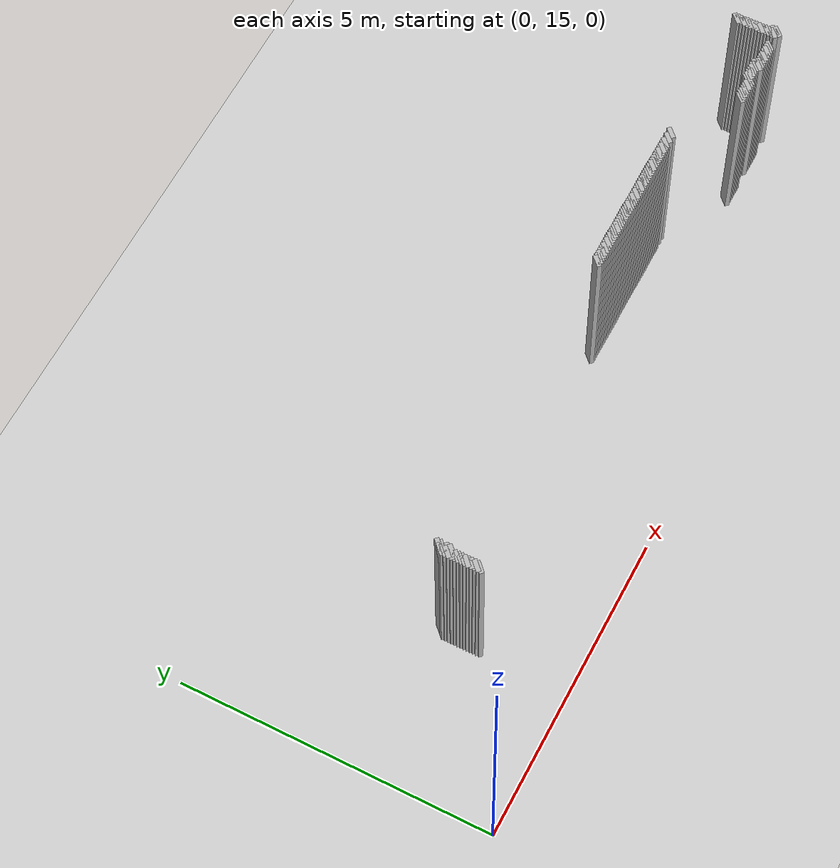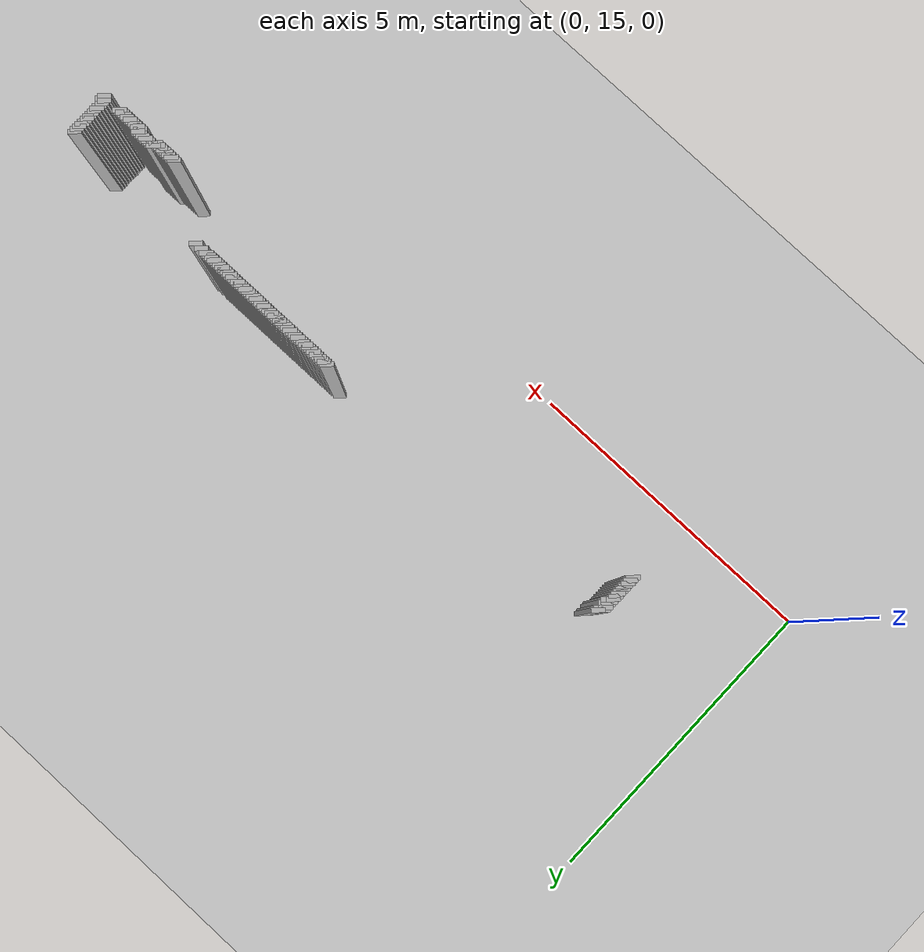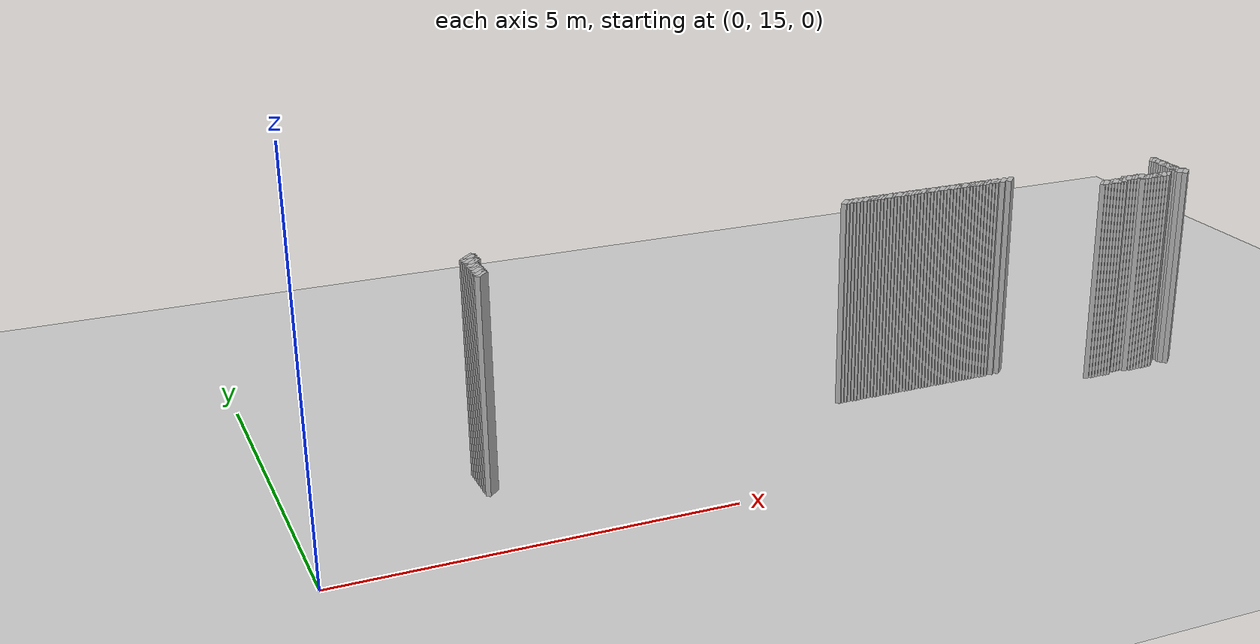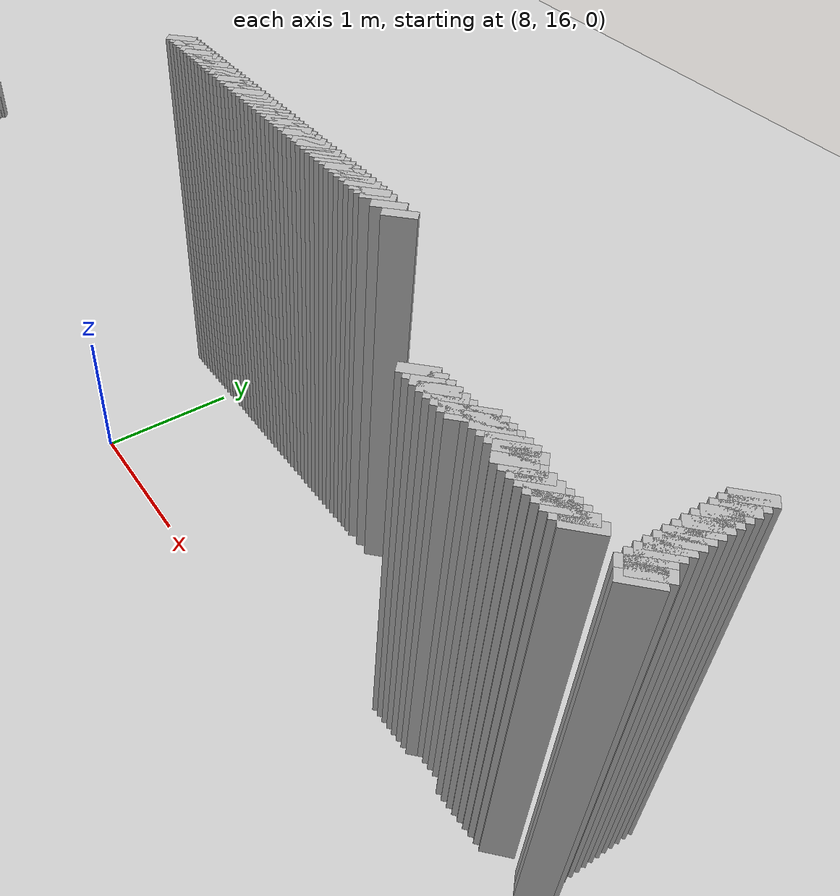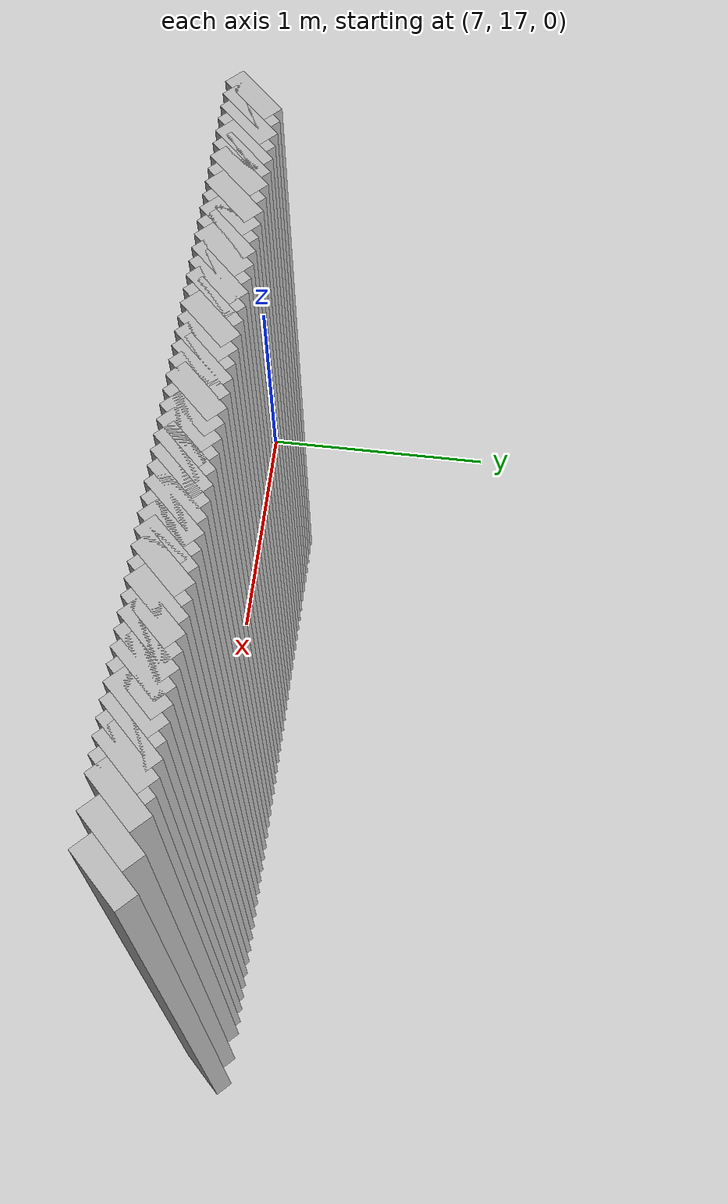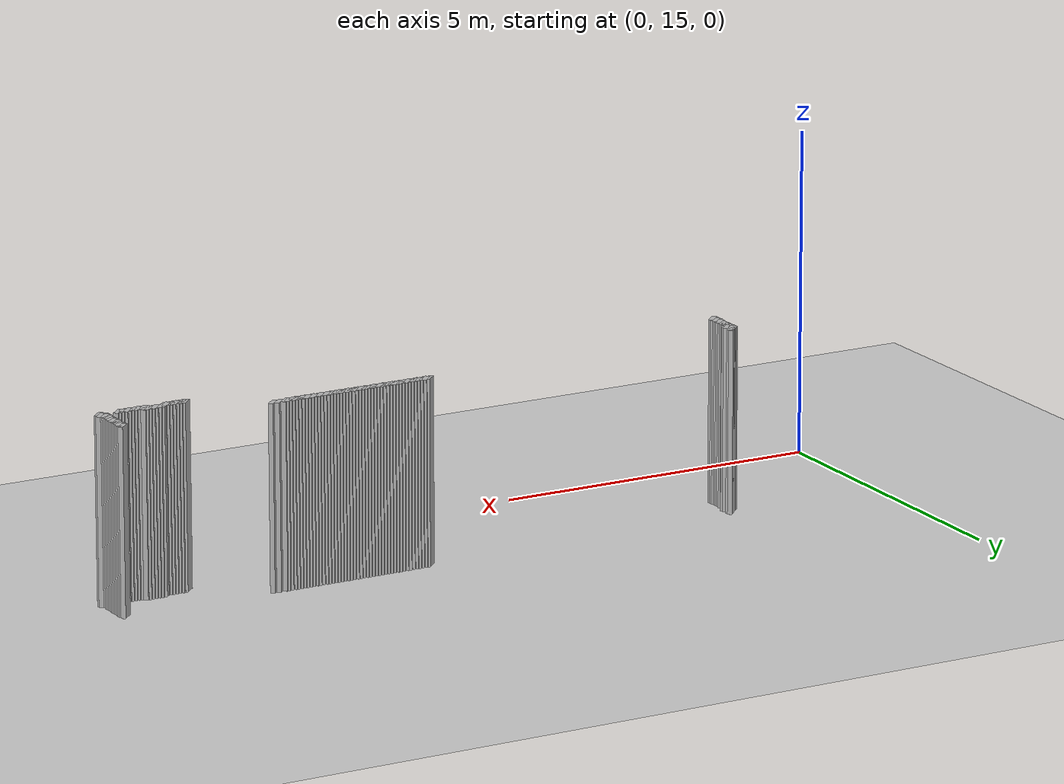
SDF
<sdf version="1.5">
 <world name="default">
  <include><uri>model://ground_plane</uri></include>
  <include><uri>model://sun</uri></include>
  <model name="grey_wall_214">
   <static>1</static>
   <link name="link">
    <pose>7.5 17.150000000000002  1.4 0 0 -0.7853981633974128</pose>
    <collision name="collision">
     <geometry><box><size>0.07071067811865325 .2  2.8</size></box></geometry>
    </collision>
    <visual name="visual">
     <cast_shadows>0</cast_shadows>
     <geometry><box><size>0.07071067811865325 .2  2.8</size></box></geometry>
    </visual>
   </link>
  </model>
  <model name="grey_wall_215">
   <static>1</static>
   <link name="link">
    <pose>7.550000000000001 17.150000000000002  1.4 0 0 -0.7853981633974128</pose>
    <collision name="collision">
     <geometry><box><size>0.07071067811865325 .2  2.8</size></box></geometry>
    </collision>
    <visual name="visual">
     <cast_shadows>0</cast_shadows>
     <geometry><box><size>0.07071067811865325 .2  2.8</size></box></geometry>
    </visual>
   </link>
  </model>
  <model name="grey_wall_216">
   <static>1</static>
   <link name="link">
    <pose>7.6000000000000005 17.150000000000002  1.4 0 0 -0.7853981633974128</pose>
    <collision name="collision">
     <geometry><box><size>0.07071067811865325 .2  2.8</size></box></geometry>
    </collision>
    <visual name="visual">
     <cast_shadows>0</cast_shadows>
     <geometry><box><size>0.07071067811865325 .2  2.8</size></box></geometry>
    </visual>
   </link>
  </model>
  <model name="grey_wall_217">
   <static>1</static>
   <link name="link">
    <pose>7.65 17.150000000000002  1.4 0 0 -0.7853981633974128</pose>
    <collision name="collision">
     <geometry><box><size>0.07071067811865325 .2  2.8</size></box></geometry>
    </collision>
    <visual name="visual">
     <cast_shadows>0</cast_shadows>
     <geometry><box><size>0.07071067811865325 .2  2.8</size></box></geometry>
    </visual>
   </link>
  </model>
  <model name="grey_wall_218">
   <static>1</static>
   <link name="link">
    <pose>7.7 17.150000000000002  1.4 0 0 -0.7853981633974128</pose>
    <collision name="collision">
     <geometry><box><size>0.07071067811865325 .2  2.8</size></box></geometry>
    </collision>
    <visual name="visual">
     <cast_shadows>0</cast_shadows>
     <geometry><box><size>0.07071067811865325 .2  2.8</size></box></geometry>
    </visual>
   </link>
  </model>
  <model name="grey_wall_219">
   <static>1</static>
   <link name="link">
    <pose>7.75 17.150000000000002  1.4 0 0 -0.7853981633974128</pose>
    <collision name="collision">
     <geometry><box><size>0.07071067811865325 .2  2.8</size></box></geometry>
    </collision>
    <visual name="visual">
     <cast_shadows>0</cast_shadows>
     <geometry><box><size>0.07071067811865325 .2  2.8</size></box></geometry>
    </visual>
   </link>
  </model>
  <model name="grey_wall_220">
   <static>1</static>
   <link name="link">
    <pose>7.800000000000001 17.150000000000002  1.4 0 0 -0.7853981633974128</pose>
    <collision name="collision">
     <geometry><box><size>0.07071067811865325 .2  2.8</size></box></geometry>
    </collision>
    <visual name="visual">
     <cast_shadows>0</cast_shadows>
     <geometry><box><size>0.07071067811865325 .2  2.8</size></box></geometry>
    </visual>
   </link>
  </model>
  <model name="grey_wall_221">
   <static>1</static>
   <link name="link">
    <pose>7.8500000000000005 17.150000000000002  1.4 0 0 -0.7853981633974128</pose>
    <collision name="collision">
     <geometry><box><size>0.07071067811865325 .2  2.8</size></box></geometry>
    </collision>
    <visual name="visual">
     <cast_shadows>0</cast_shadows>
     <geometry><box><size>0.07071067811865325 .2  2.8</size></box></geometry>
    </visual>
   </link>
  </model>
  <model name="grey_wall_222">
   <static>1</static>
   <link name="link">
    <pose>7.9 17.150000000000002  1.4 0 0 -0.7853981633974128</pose>
    <collision name="collision">
     <geometry><box><size>0.07071067811865325 .2  2.8</size></box></geometry>
    </collision>
    <visual name="visual">
     <cast_shadows>0</cast_shadows>
     <geometry><box><size>0.07071067811865325 .2  2.8</size></box></geometry>
    </visual>
   </link>
  </model>
  <model name="grey_wall_223">
   <static>1</static>
   <link name="link">
    <pose>7.95 17.150000000000002  1.4 0 0 -0.7853981633974128</pose>
    <collision name="collision">
     <geometry><box><size>0.07071067811865325 .2  2.8</size></box></geometry>
    </collision>
    <visual name="visual">
     <cast_shadows>0</cast_shadows>
     <geometry><box><size>0.07071067811865325 .2  2.8</size></box></geometry>
    </visual>
   </link>
  </model>
  <model name="grey_wall_224">
   <static>1</static>
   <link name="link">
    <pose>8.0 17.150000000000002  1.4 0 0 -0.7853981633974128</pose>
    <collision name="collision">
     <geometry><box><size>0.07071067811865325 .2  2.8</size></box></geometry>
    </collision>
    <visual name="visual">
     <cast_shadows>0</cast_shadows>
     <geometry><box><size>0.07071067811865325 .2  2.8</size></box></geometry>
    </visual>
   </link>
  </model>
  <model name="grey_wall_225">
   <static>1</static>
   <link name="link">
    <pose>8.05 17.150000000000002  1.4 0 0 -0.7853981633974128</pose>
    <collision name="collision">
     <geometry><box><size>0.07071067811865325 .2  2.8</size></box></geometry>
    </collision>
    <visual name="visual">
     <cast_shadows>0</cast_shadows>
     <geometry><box><size>0.07071067811865325 .2  2.8</size></box></geometry>
    </visual>
   </link>
  </model>
  <model name="grey_wall_226">
   <static>1</static>
   <link name="link">
    <pose>8.1 17.150000000000002  1.4 0 0 -0.7853981633974128</pose>
    <collision name="collision">
     <geometry><box><size>0.07071067811865325 .2  2.8</size></box></geometry>
    </collision>
    <visual name="visual">
     <cast_shadows>0</cast_shadows>
     <geometry><box><size>0.07071067811865325 .2  2.8</size></box></geometry>
    </visual>
   </link>
  </model>
  <model name="grey_wall_227">
   <static>1</static>
   <link name="link">
    <pose>8.15 17.150000000000002  1.4 0 0 -0.7853981633974128</pose>
    <collision name="collision">
     <geometry><box><size>0.07071067811865325 .2  2.8</size></box></geometry>
    </collision>
    <visual name="visual">
     <cast_shadows>0</cast_shadows>
     <geometry><box><size>0.07071067811865325 .2  2.8</size></box></geometry>
    </visual>
   </link>
  </model>
  <model name="grey_wall_228">
   <static>1</static>
   <link name="link">
    <pose>8.200000000000001 17.150000000000002  1.4 0 0 -0.7853981633974128</pose>
    <collision name="collision">
     <geometry><box><size>0.07071067811865325 .2  2.8</size></box></geometry>
    </collision>
    <visual name="visual">
     <cast_shadows>0</cast_shadows>
     <geometry><box><size>0.07071067811865325 .2  2.8</size></box></geometry>
    </visual>
   </link>
  </model>
  <model name="grey_wall_229">
   <static>1</static>
   <link name="link">
    <pose>8.25 17.150000000000002  1.4 0 0 -0.7853981633974128</pose>
    <collision name="collision">
     <geometry><box><size>0.07071067811865325 .2  2.8</size></box></geometry>
    </collision>
    <visual name="visual">
     <cast_shadows>0</cast_shadows>
     <geometry><box><size>0.07071067811865325 .2  2.8</size></box></geometry>
    </visual>
   </link>
  </model>
  <model name="grey_wall_230">
   <static>1</static>
   <link name="link">
    <pose>8.3 17.150000000000002  1.4 0 0 -0.7853981633974128</pose>
    <collision name="collision">
     <geometry><box><size>0.07071067811865325 .2  2.8</size></box></geometry>
    </collision>
    <visual name="visual">
     <cast_shadows>0</cast_shadows>
     <geometry><box><size>0.07071067811865325 .2  2.8</size></box></geometry>
    </visual>
   </link>
  </model>
  <model name="grey_wall_231">
   <static>1</static>
   <link name="link">
    <pose>8.35 17.150000000000002  1.4 0 0 -0.7853981633974128</pose>
    <collision name="collision">
     <geometry><box><size>0.07071067811865325 .2  2.8</size></box></geometry>
    </collision>
    <visual name="visual">
     <cast_shadows>0</cast_shadows>
     <geometry><box><size>0.07071067811865325 .2  2.8</size></box></geometry>
    </visual>
   </link>
  </model>
  <model name="grey_wall_232">
   <static>1</static>
   <link name="link">
    <pose>8.4 17.150000000000002  1.4 0 0 -0.7853981633974128</pose>
    <collision name="collision">
     <geometry><box><size>0.07071067811865325 .2  2.8</size></box></geometry>
    </collision>
    <visual name="visual">
     <cast_shadows>0</cast_shadows>
     <geometry><box><size>0.07071067811865325 .2  2.8</size></box></geometry>
    </visual>
   </link>
  </model>
  <model name="grey_wall_233">
   <static>1</static>
   <link name="link">
    <pose>8.450000000000001 17.150000000000002  1.4 0 0 -0.7853981633974128</pose>
    <collision name="collision">
     <geometry><box><size>0.07071067811865325 .2  2.8</size></box></geometry>
    </collision>
    <visual name="visual">
     <cast_shadows>0</cast_shadows>
     <geometry><box><size>0.07071067811865325 .2  2.8</size></box></geometry>
    </visual>
   </link>
  </model>
  <model name="grey_wall_234">
   <static>1</static>
   <link name="link">
    <pose>8.5 17.150000000000002  1.4 0 0 -0.7853981633974128</pose>
    <collision name="collision">
     <geometry><box><size>0.07071067811865325 .2  2.8</size></box></geometry>
    </collision>
    <visual name="visual">
     <cast_shadows>0</cast_shadows>
     <geometry><box><size>0.07071067811865325 .2  2.8</size></box></geometry>
    </visual>
   </link>
  </model>
  <model name="grey_wall_235">
   <static>1</static>
   <link name="link">
    <pose>8.55 17.150000000000002  1.4 0 0 -0.7853981633974128</pose>
    <collision name="collision">
     <geometry><box><size>0.07071067811865325 .2  2.8</size></box></geometry>
    </collision>
    <visual name="visual">
     <cast_shadows>0</cast_shadows>
     <geometry><box><size>0.07071067811865325 .2  2.8</size></box></geometry>
    </visual>
   </link>
  </model>
  <model name="grey_wall_236">
   <static>1</static>
   <link name="link">
    <pose>8.6 17.150000000000002  1.4 0 0 -0.7853981633974128</pose>
    <collision name="collision">
     <geometry><box><size>0.07071067811865325 .2  2.8</size></box></geometry>
    </collision>
    <visual name="visual">
     <cast_shadows>0</cast_shadows>
     <geometry><box><size>0.07071067811865325 .2  2.8</size></box></geometry>
    </visual>
   </link>
  </model>
  <model name="grey_wall_237">
   <static>1</static>
   <link name="link">
    <pose>8.65 17.150000000000002  1.4 0 0 -0.7853981633974128</pose>
    <collision name="collision">
     <geometry><box><size>0.07071067811865325 .2  2.8</size></box></geometry>
    </collision>
    <visual name="visual">
     <cast_shadows>0</cast_shadows>
     <geometry><box><size>0.07071067811865325 .2  2.8</size></box></geometry>
    </visual>
   </link>
  </model>
  <model name="grey_wall_238">
   <static>1</static>
   <link name="link">
    <pose>8.700000000000001 17.150000000000002  1.4 0 0 -0.7853981633974128</pose>
    <collision name="collision">
     <geometry><box><size>0.07071067811865325 .2  2.8</size></box></geometry>
    </collision>
    <visual name="visual">
     <cast_shadows>0</cast_shadows>
     <geometry><box><size>0.07071067811865325 .2  2.8</size></box></geometry>
    </visual>
   </link>
  </model>
  <model name="grey_wall_239">
   <static>1</static>
   <link name="link">
    <pose>8.75 17.150000000000002  1.4 0 0 -0.7853981633974128</pose>
    <collision name="collision">
     <geometry><box><size>0.07071067811865325 .2  2.8</size></box></geometry>
    </collision>
    <visual name="visual">
     <cast_shadows>0</cast_shadows>
     <geometry><box><size>0.07071067811865325 .2  2.8</size></box></geometry>
    </visual>
   </link>
  </model>
  <model name="grey_wall_240">
   <static>1</static>
   <link name="link">
    <pose>8.8 17.150000000000002  1.4 0 0 -0.7853981633974128</pose>
    <collision name="collision">
     <geometry><box><size>0.07071067811865325 .2  2.8</size></box></geometry>
    </collision>
    <visual name="visual">
     <cast_shadows>0</cast_shadows>
     <geometry><box><size>0.07071067811865325 .2  2.8</size></box></geometry>
    </visual>
   </link>
  </model>
  <model name="grey_wall_241">
   <static>1</static>
   <link name="link">
    <pose>8.85 17.150000000000002  1.4 0 0 -0.7853981633974128</pose>
    <collision name="collision">
     <geometry><box><size>0.07071067811865325 .2  2.8</size></box></geometry>
    </collision>
    <visual name="visual">
     <cast_shadows>0</cast_shadows>
     <geometry><box><size>0.07071067811865325 .2  2.8</size></box></geometry>
    </visual>
   </link>
  </model>
  <model name="grey_wall_242">
   <static>1</static>
   <link name="link">
    <pose>8.9 17.150000000000002  1.4 0 0 -0.7853981633974128</pose>
    <collision name="collision">
     <geometry><box><size>0.07071067811865325 .2  2.8</size></box></geometry>
    </collision>
    <visual name="visual">
     <cast_shadows>0</cast_shadows>
     <geometry><box><size>0.07071067811865325 .2  2.8</size></box></geometry>
    </visual>
   </link>
  </model>
  <model name="grey_wall_243">
   <static>1</static>
   <link name="link">
    <pose>8.950000000000001 17.150000000000002  1.4 0 0 -0.7853981633974128</pose>
    <collision name="collision">
     <geometry><box><size>0.07071067811865325 .2  2.8</size></box></geometry>
    </collision>
    <visual name="visual">
     <cast_shadows>0</cast_shadows>
     <geometry><box><size>0.07071067811865325 .2  2.8</size></box></geometry>
    </visual>
   </link>
  </model>
  <model name="grey_wall_244">
   <static>1</static>
   <link name="link">
    <pose>9.0 17.150000000000002  1.4 0 0 -0.7853981633974128</pose>
    <collision name="collision">
     <geometry><box><size>0.07071067811865325 .2  2.8</size></box></geometry>
    </collision>
    <visual name="visual">
     <cast_shadows>0</cast_shadows>
     <geometry><box><size>0.07071067811865325 .2  2.8</size></box></geometry>
    </visual>
   </link>
  </model>
  <model name="grey_wall_245">
   <static>1</static>
   <link name="link">
    <pose>9.05 17.150000000000002  1.4 0 0 -0.7853981633974128</pose>
    <collision name="collision">
     <geometry><box><size>0.07071067811865325 .2  2.8</size></box></geometry>
    </collision>
    <visual name="visual">
     <cast_shadows>0</cast_shadows>
     <geometry><box><size>0.07071067811865325 .2  2.8</size></box></geometry>
    </visual>
   </link>
  </model>
  <model name="grey_wall_246">
   <static>1</static>
   <link name="link">
    <pose>9.1 17.150000000000002  1.4 0 0 -0.7853981633974128</pose>
    <collision name="collision">
     <geometry><box><size>0.07071067811865325 .2  2.8</size></box></geometry>
    </collision>
    <visual name="visual">
     <cast_shadows>0</cast_shadows>
     <geometry><box><size>0.07071067811865325 .2  2.8</size></box></geometry>
    </visual>
   </link>
  </model>
  <model name="grey_wall_247">
   <static>1</static>
   <link name="link">
    <pose>9.15 17.150000000000002  1.4 0 0 -0.7853981633974128</pose>
    <collision name="collision">
     <geometry><box><size>0.07071067811865325 .2  2.8</size></box></geometry>
    </collision>
    <visual name="visual">
     <cast_shadows>0</cast_shadows>
     <geometry><box><size>0.07071067811865325 .2  2.8</size></box></geometry>
    </visual>
   </link>
  </model>
  <model name="grey_wall_248">
   <static>1</static>
   <link name="link">
    <pose>9.200000000000001 17.150000000000002  1.4 0 0 -0.7853981633974128</pose>
    <collision name="collision">
     <geometry><box><size>0.07071067811865325 .2  2.8</size></box></geometry>
    </collision>
    <visual name="visual">
     <cast_shadows>0</cast_shadows>
     <geometry><box><size>0.07071067811865325 .2  2.8</size></box></geometry>
    </visual>
   </link>
  </model>
  <model name="grey_wall_249">
   <static>1</static>
   <link name="link">
    <pose>9.25 17.150000000000002  1.4 0 0 -0.7853981633974128</pose>
    <collision name="collision">
     <geometry><box><size>0.07071067811865325 .2  2.8</size></box></geometry>
    </collision>
    <visual name="visual">
     <cast_shadows>0</cast_shadows>
     <geometry><box><size>0.07071067811865325 .2  2.8</size></box></geometry>
    </visual>
   </link>
  </model>
  <model name="grey_wall_250">
   <static>1</static>
   <link name="link">
    <pose>9.3 17.150000000000002  1.4 0 0 -0.7853981633974128</pose>
    <collision name="collision">
     <geometry><box><size>0.07071067811865325 .2  2.8</size></box></geometry>
    </collision>
    <visual name="visual">
     <cast_shadows>0</cast_shadows>
     <geometry><box><size>0.07071067811865325 .2  2.8</size></box></geometry>
    </visual>
   </link>
  </model>
  <model name="grey_wall_251">
   <static>1</static>
   <link name="link">
    <pose>9.35 17.150000000000002  1.4 0 0 -0.7853981633974128</pose>
    <collision name="collision">
     <geometry><box><size>0.07071067811865325 .2  2.8</size></box></geometry>
    </collision>
    <visual name="visual">
     <cast_shadows>0</cast_shadows>
     <geometry><box><size>0.07071067811865325 .2  2.8</size></box></geometry>
    </visual>
   </link>
  </model>
  <model name="grey_wall_252">
   <static>1</static>
   <link name="link">
    <pose>9.4 17.150000000000002  1.4 0 0 -0.7853981633974128</pose>
    <collision name="collision">
     <geometry><box><size>0.07071067811865325 .2  2.8</size></box></geometry>
    </collision>
    <visual name="visual">
     <cast_shadows>0</cast_shadows>
     <geometry><box><size>0.07071067811865325 .2  2.8</size></box></geometry>
    </visual>
   </link>
  </model>
  <model name="grey_wall_253">
   <static>1</static>
   <link name="link">
    <pose>9.450000000000001 17.150000000000002  1.4 0 0 -0.7853981633974128</pose>
    <collision name="collision">
     <geometry><box><size>0.07071067811865325 .2  2.8</size></box></geometry>
    </collision>
    <visual name="visual">
     <cast_shadows>0</cast_shadows>
     <geometry><box><size>0.07071067811865325 .2  2.8</size></box></geometry>
    </visual>
   </link>
  </model>
  <model name="grey_wall_254">
   <static>1</static>
   <link name="link">
    <pose>9.5 17.150000000000002  1.4 0 0 -0.7853981633974128</pose>
    <collision name="collision">
     <geometry><box><size>0.07071067811865325 .2  2.8</size></box></geometry>
    </collision>
    <visual name="visual">
     <cast_shadows>0</cast_shadows>
     <geometry><box><size>0.07071067811865325 .2  2.8</size></box></geometry>
    </visual>
   </link>
  </model>
  <model name="grey_wall_255">
   <static>1</static>
   <link name="link">
    <pose>9.55 17.150000000000002  1.4 0 0 -0.7853981633974128</pose>
    <collision name="collision">
     <geometry><box><size>0.07071067811865325 .2  2.8</size></box></geometry>
    </collision>
    <visual name="visual">
     <cast_shadows>0</cast_shadows>
     <geometry><box><size>0.07071067811865325 .2  2.8</size></box></geometry>
    </visual>
   </link>
  </model>
  <model name="grey_wall_256">
   <static>1</static>
   <link name="link">
    <pose>9.600000000000001 17.150000000000002  1.4 0 0 -0.7853981633974128</pose>
    <collision name="collision">
     <geometry><box><size>0.07071067811865325 .2  2.8</size></box></geometry>
    </collision>
    <visual name="visual">
     <cast_shadows>0</cast_shadows>
     <geometry><box><size>0.07071067811865325 .2  2.8</size></box></geometry>
    </visual>
   </link>
  </model>
  <model name="grey_wall_257">
   <static>1</static>
   <link name="link">
    <pose>9.65 17.150000000000002  1.4 0 0 -0.7853981633974128</pose>
    <collision name="collision">
     <geometry><box><size>0.07071067811865325 .2  2.8</size></box></geometry>
    </collision>
    <visual name="visual">
     <cast_shadows>0</cast_shadows>
     <geometry><box><size>0.07071067811865325 .2  2.8</size></box></geometry>
    </visual>
   </link>
  </model>
  <model name="grey_wall_258">
   <static>1</static>
   <link name="link">
    <pose>9.700000000000001 17.150000000000002  1.4 0 0 -0.7853981633974128</pose>
    <collision name="collision">
     <geometry><box><size>0.07071067811865325 .2  2.8</size></box></geometry>
    </collision>
    <visual name="visual">
     <cast_shadows>0</cast_shadows>
     <geometry><box><size>0.07071067811865325 .2  2.8</size></box></geometry>
    </visual>
   </link>
  </model>
  <model name="grey_wall_259">
   <static>1</static>
   <link name="link">
    <pose>9.75 17.150000000000002  1.4 0 0 -0.7853981633974128</pose>
    <collision name="collision">
     <geometry><box><size>0.07071067811865325 .2  2.8</size></box></geometry>
    </collision>
    <visual name="visual">
     <cast_shadows>0</cast_shadows>
     <geometry><box><size>0.07071067811865325 .2  2.8</size></box></geometry>
    </visual>
   </link>
  </model>
  <model name="grey_wall_260">
   <static>1</static>
   <link name="link">
    <pose>9.8 17.150000000000002  1.4 0 0 -0.7853981633974128</pose>
    <collision name="collision">
     <geometry><box><size>0.07071067811865325 .2  2.8</size></box></geometry>
    </collision>
    <visual name="visual">
     <cast_shadows>0</cast_shadows>
     <geometry><box><size>0.07071067811865325 .2  2.8</size></box></geometry>
    </visual>
   </link>
  </model>
  <model name="grey_wall_261">
   <static>1</static>
   <link name="link">
    <pose>9.9 17.150000000000002  1.4 0 0 -0.7853981633974128</pose>
    <collision name="collision">
     <geometry><box><size>0.07071067811865325 .2  2.8</size></box></geometry>
    </collision>
    <visual name="visual">
     <cast_shadows>0</cast_shadows>
     <geometry><box><size>0.07071067811865325 .2  2.8</size></box></geometry>
    </visual>
   </link>
  </model>
  <model name="grey_wall_262">
   <static>1</static>
   <link name="link">
    <pose>10.0 17.150000000000002  1.4 0 0 -0.7853981633974128</pose>
    <collision name="collision">
     <geometry><box><size>0.07071067811865325 .2  2.8</size></box></geometry>
    </collision>
    <visual name="visual">
     <cast_shadows>0</cast_shadows>
     <geometry><box><size>0.07071067811865325 .2  2.8</size></box></geometry>
    </visual>
   </link>
  </model>
  <model name="grey_wall_263">
   <static>1</static>
   <link name="link">
    <pose>12.350000000000001 17.150000000000002  1.4 0 0 -0.7853981633974128</pose>
    <collision name="collision">
     <geometry><box><size>0.07071067811865325 .2  2.8</size></box></geometry>
    </collision>
    <visual name="visual">
     <cast_shadows>0</cast_shadows>
     <geometry><box><size>0.07071067811865325 .2  2.8</size></box></geometry>
    </visual>
   </link>
  </model>
  <model name="grey_wall_264">
   <static>1</static>
   <link name="link">
    <pose>2.45 17.1  1.4 0 0 -0.7853981633974216</pose>
    <collision name="collision">
     <geometry><box><size>0.07071067811865261 .2  2.8</size></box></geometry>
    </collision>
    <visual name="visual">
     <cast_shadows>0</cast_shadows>
     <geometry><box><size>0.07071067811865261 .2  2.8</size></box></geometry>
    </visual>
   </link>
  </model>
  <model name="grey_wall_265">
   <static>1</static>
   <link name="link">
    <pose>12.350000000000001 17.1  1.4 0 0 -0.7853981633974128</pose>
    <collision name="collision">
     <geometry><box><size>0.07071067811865325 .2  2.8</size></box></geometry>
    </collision>
    <visual name="visual">
     <cast_shadows>0</cast_shadows>
     <geometry><box><size>0.07071067811865325 .2  2.8</size></box></geometry>
    </visual>
   </link>
  </model>
  <model name="grey_wall_266">
   <static>1</static>
   <link name="link">
    <pose>2.4000000000000004 17.05  1.4 0 0 -0.7853981633974216</pose>
    <collision name="collision">
     <geometry><box><size>0.07071067811865261 .2  2.8</size></box></geometry>
    </collision>
    <visual name="visual">
     <cast_shadows>0</cast_shadows>
     <geometry><box><size>0.07071067811865261 .2  2.8</size></box></geometry>
    </visual>
   </link>
  </model>
  <model name="grey_wall_267">
   <static>1</static>
   <link name="link">
    <pose>2.45 17.05  1.4 0 0 -0.7853981633974216</pose>
    <collision name="collision">
     <geometry><box><size>0.07071067811865261 .2  2.8</size></box></geometry>
    </collision>
    <visual name="visual">
     <cast_shadows>0</cast_shadows>
     <geometry><box><size>0.07071067811865261 .2  2.8</size></box></geometry>
    </visual>
   </link>
  </model>
  <model name="grey_wall_268">
   <static>1</static>
   <link name="link">
    <pose>12.350000000000001 17.05  1.4 0 0 -0.7853981633974128</pose>
    <collision name="collision">
     <geometry><box><size>0.07071067811865325 .2  2.8</size></box></geometry>
    </collision>
    <visual name="visual">
     <cast_shadows>0</cast_shadows>
     <geometry><box><size>0.07071067811865325 .2  2.8</size></box></geometry>
    </visual>
   </link>
  </model>
  <model name="grey_wall_269">
   <static>1</static>
   <link name="link">
    <pose>2.4000000000000004 17.0  1.4 0 0 -0.7853981633974216</pose>
    <collision name="collision">
     <geometry><box><size>0.07071067811865261 .2  2.8</size></box></geometry>
    </collision>
    <visual name="visual">
     <cast_shadows>0</cast_shadows>
     <geometry><box><size>0.07071067811865261 .2  2.8</size></box></geometry>
    </visual>
   </link>
  </model>
  <model name="grey_wall_270">
   <static>1</static>
   <link name="link">
    <pose>12.350000000000001 17.0  1.4 0 0 -0.7853981633974128</pose>
    <collision name="collision">
     <geometry><box><size>0.07071067811865325 .2  2.8</size></box></geometry>
    </collision>
    <visual name="visual">
     <cast_shadows>0</cast_shadows>
     <geometry><box><size>0.07071067811865325 .2  2.8</size></box></geometry>
    </visual>
   </link>
  </model>
  <model name="grey_wall_271">
   <static>1</static>
   <link name="link">
    <pose>2.4000000000000004 16.95  1.4 0 0 -0.7853981633974216</pose>
    <collision name="collision">
     <geometry><box><size>0.07071067811865261 .2  2.8</size></box></geometry>
    </collision>
    <visual name="visual">
     <cast_shadows>0</cast_shadows>
     <geometry><box><size>0.07071067811865261 .2  2.8</size></box></geometry>
    </visual>
   </link>
  </model>
  <model name="grey_wall_272">
   <static>1</static>
   <link name="link">
    <pose>2.45 16.95  1.4 0 0 -0.7853981633974216</pose>
    <collision name="collision">
     <geometry><box><size>0.07071067811865261 .2  2.8</size></box></geometry>
    </collision>
    <visual name="visual">
     <cast_shadows>0</cast_shadows>
     <geometry><box><size>0.07071067811865261 .2  2.8</size></box></geometry>
    </visual>
   </link>
  </model>
  <model name="grey_wall_273">
   <static>1</static>
   <link name="link">
    <pose>12.350000000000001 16.95  1.4 0 0 -0.7853981633974128</pose>
    <collision name="collision">
     <geometry><box><size>0.07071067811865325 .2  2.8</size></box></geometry>
    </collision>
    <visual name="visual">
     <cast_shadows>0</cast_shadows>
     <geometry><box><size>0.07071067811865325 .2  2.8</size></box></geometry>
    </visual>
   </link>
  </model>
  <model name="grey_wall_274">
   <static>1</static>
   <link name="link">
    <pose>2.4000000000000004 16.900000000000002  1.4 0 0 -0.7853981633974216</pose>
    <collision name="collision">
     <geometry><box><size>0.07071067811865261 .2  2.8</size></box></geometry>
    </collision>
    <visual name="visual">
     <cast_shadows>0</cast_shadows>
     <geometry><box><size>0.07071067811865261 .2  2.8</size></box></geometry>
    </visual>
   </link>
  </model>
  <model name="grey_wall_275">
   <static>1</static>
   <link name="link">
    <pose>2.45 16.900000000000002  1.4 0 0 -0.7853981633974216</pose>
    <collision name="collision">
     <geometry><box><size>0.07071067811865261 .2  2.8</size></box></geometry>
    </collision>
    <visual name="visual">
     <cast_shadows>0</cast_shadows>
     <geometry><box><size>0.07071067811865261 .2  2.8</size></box></geometry>
    </visual>
   </link>
  </model>
  <model name="grey_wall_276">
   <static>1</static>
   <link name="link">
    <pose>12.350000000000001 16.900000000000002  1.4 0 0 -0.7853981633974128</pose>
    <collision name="collision">
     <geometry><box><size>0.07071067811865325 .2  2.8</size></box></geometry>
    </collision>
    <visual name="visual">
     <cast_shadows>0</cast_shadows>
     <geometry><box><size>0.07071067811865325 .2  2.8</size></box></geometry>
    </visual>
   </link>
  </model>
  <model name="grey_wall_277">
   <static>1</static>
   <link name="link">
    <pose>2.4000000000000004 16.85  1.4 0 0 -0.7853981633974216</pose>
    <collision name="collision">
     <geometry><box><size>0.07071067811865261 .2  2.8</size></box></geometry>
    </collision>
    <visual name="visual">
     <cast_shadows>0</cast_shadows>
     <geometry><box><size>0.07071067811865261 .2  2.8</size></box></geometry>
    </visual>
   </link>
  </model>
  <model name="grey_wall_278">
   <static>1</static>
   <link name="link">
    <pose>12.350000000000001 16.85  1.4 0 0 -0.7853981633974128</pose>
    <collision name="collision">
     <geometry><box><size>0.07071067811865325 .2  2.8</size></box></geometry>
    </collision>
    <visual name="visual">
     <cast_shadows>0</cast_shadows>
     <geometry><box><size>0.07071067811865325 .2  2.8</size></box></geometry>
    </visual>
   </link>
  </model>
  <model name="grey_wall_279">
   <static>1</static>
   <link name="link">
    <pose>2.4000000000000004 16.8  1.4 0 0 -0.7853981633974216</pose>
    <collision name="collision">
     <geometry><box><size>0.07071067811865261 .2  2.8</size></box></geometry>
    </collision>
    <visual name="visual">
     <cast_shadows>0</cast_shadows>
     <geometry><box><size>0.07071067811865261 .2  2.8</size></box></geometry>
    </visual>
   </link>
  </model>
  <model name="grey_wall_280">
   <static>1</static>
   <link name="link">
    <pose>12.350000000000001 16.8  1.4 0 0 -0.7853981633974128</pose>
    <collision name="collision">
     <geometry><box><size>0.07071067811865325 .2  2.8</size></box></geometry>
    </collision>
    <visual name="visual">
     <cast_shadows>0</cast_shadows>
     <geometry><box><size>0.07071067811865325 .2  2.8</size></box></geometry>
    </visual>
   </link>
  </model>
  <model name="grey_wall_281">
   <static>1</static>
   <link name="link">
    <pose>2.4000000000000004 16.75  1.4 0 0 -0.7853981633974216</pose>
    <collision name="collision">
     <geometry><box><size>0.07071067811865261 .2  2.8</size></box></geometry>
    </collision>
    <visual name="visual">
     <cast_shadows>0</cast_shadows>
     <geometry><box><size>0.07071067811865261 .2  2.8</size></box></geometry>
    </visual>
   </link>
  </model>
  <model name="grey_wall_282">
   <static>1</static>
   <link name="link">
    <pose>12.350000000000001 16.75  1.4 0 0 -0.7853981633974128</pose>
    <collision name="collision">
     <geometry><box><size>0.07071067811865325 .2  2.8</size></box></geometry>
    </collision>
    <visual name="visual">
     <cast_shadows>0</cast_shadows>
     <geometry><box><size>0.07071067811865325 .2  2.8</size></box></geometry>
    </visual>
   </link>
  </model>
  <model name="grey_wall_283">
   <static>1</static>
   <link name="link">
    <pose>2.4000000000000004 16.7  1.4 0 0 -0.7853981633974216</pose>
    <collision name="collision">
     <geometry><box><size>0.07071067811865261 .2  2.8</size></box></geometry>
    </collision>
    <visual name="visual">
     <cast_shadows>0</cast_shadows>
     <geometry><box><size>0.07071067811865261 .2  2.8</size></box></geometry>
    </visual>
   </link>
  </model>
  <model name="grey_wall_284">
   <static>1</static>
   <link name="link">
    <pose>12.350000000000001 16.7  1.4 0 0 -0.7853981633974128</pose>
    <collision name="collision">
     <geometry><box><size>0.07071067811865325 .2  2.8</size></box></geometry>
    </collision>
    <visual name="visual">
     <cast_shadows>0</cast_shadows>
     <geometry><box><size>0.07071067811865325 .2  2.8</size></box></geometry>
    </visual>
   </link>
  </model>
  <model name="grey_wall_285">
   <static>1</static>
   <link name="link">
    <pose>2.4000000000000004 16.650000000000002  1.4 0 0 -0.7853981633974216</pose>
    <collision name="collision">
     <geometry><box><size>0.07071067811865261 .2  2.8</size></box></geometry>
    </collision>
    <visual name="visual">
     <cast_shadows>0</cast_shadows>
     <geometry><box><size>0.07071067811865261 .2  2.8</size></box></geometry>
    </visual>
   </link>
  </model>
  <model name="grey_wall_286">
   <static>1</static>
   <link name="link">
    <pose>12.350000000000001 16.650000000000002  1.4 0 0 -0.7853981633974128</pose>
    <collision name="collision">
     <geometry><box><size>0.07071067811865325 .2  2.8</size></box></geometry>
    </collision>
    <visual name="visual">
     <cast_shadows>0</cast_shadows>
     <geometry><box><size>0.07071067811865325 .2  2.8</size></box></geometry>
    </visual>
   </link>
  </model>
  <model name="grey_wall_287">
   <static>1</static>
   <link name="link">
    <pose>2.4000000000000004 16.6  1.4 0 0 -0.7853981633974216</pose>
    <collision name="collision">
     <geometry><box><size>0.07071067811865261 .2  2.8</size></box></geometry>
    </collision>
    <visual name="visual">
     <cast_shadows>0</cast_shadows>
     <geometry><box><size>0.07071067811865261 .2  2.8</size></box></geometry>
    </visual>
   </link>
  </model>
  <model name="grey_wall_288">
   <static>1</static>
   <link name="link">
    <pose>12.350000000000001 16.6  1.4 0 0 -0.7853981633974128</pose>
    <collision name="collision">
     <geometry><box><size>0.07071067811865325 .2  2.8</size></box></geometry>
    </collision>
    <visual name="visual">
     <cast_shadows>0</cast_shadows>
     <geometry><box><size>0.07071067811865325 .2  2.8</size></box></geometry>
    </visual>
   </link>
  </model>
  <model name="grey_wall_289">
   <static>1</static>
   <link name="link">
    <pose>2.4000000000000004 16.55  1.4 0 0 -0.7853981633974216</pose>
    <collision name="collision">
     <geometry><box><size>0.07071067811865261 .2  2.8</size></box></geometry>
    </collision>
    <visual name="visual">
     <cast_shadows>0</cast_shadows>
     <geometry><box><size>0.07071067811865261 .2  2.8</size></box></geometry>
    </visual>
   </link>
  </model>
  <model name="grey_wall_290">
   <static>1</static>
   <link name="link">
    <pose>11.4 16.55  1.4 0 0 -0.7853981633974128</pose>
    <collision name="collision">
     <geometry><box><size>0.07071067811865325 .2  2.8</size></box></geometry>
    </collision>
    <visual name="visual">
     <cast_shadows>0</cast_shadows>
     <geometry><box><size>0.07071067811865325 .2  2.8</size></box></geometry>
    </visual>
   </link>
  </model>
  <model name="grey_wall_291">
   <static>1</static>
   <link name="link">
    <pose>11.450000000000001 16.55  1.4 0 0 -0.7853981633974128</pose>
    <collision name="collision">
     <geometry><box><size>0.07071067811865325 .2  2.8</size></box></geometry>
    </collision>
    <visual name="visual">
     <cast_shadows>0</cast_shadows>
     <geometry><box><size>0.07071067811865325 .2  2.8</size></box></geometry>
    </visual>
   </link>
  </model>
  <model name="grey_wall_292">
   <static>1</static>
   <link name="link">
    <pose>11.5 16.55  1.4 0 0 -0.7853981633974128</pose>
    <collision name="collision">
     <geometry><box><size>0.07071067811865325 .2  2.8</size></box></geometry>
    </collision>
    <visual name="visual">
     <cast_shadows>0</cast_shadows>
     <geometry><box><size>0.07071067811865325 .2  2.8</size></box></geometry>
    </visual>
   </link>
  </model>
  <model name="grey_wall_293">
   <static>1</static>
   <link name="link">
    <pose>11.55 16.55  1.4 0 0 -0.7853981633974128</pose>
    <collision name="collision">
     <geometry><box><size>0.07071067811865325 .2  2.8</size></box></geometry>
    </collision>
    <visual name="visual">
     <cast_shadows>0</cast_shadows>
     <geometry><box><size>0.07071067811865325 .2  2.8</size></box></geometry>
    </visual>
   </link>
  </model>
  <model name="grey_wall_294">
   <static>1</static>
   <link name="link">
    <pose>11.600000000000001 16.55  1.4 0 0 -0.7853981633974128</pose>
    <collision name="collision">
     <geometry><box><size>0.07071067811865325 .2  2.8</size></box></geometry>
    </collision>
    <visual name="visual">
     <cast_shadows>0</cast_shadows>
     <geometry><box><size>0.07071067811865325 .2  2.8</size></box></geometry>
    </visual>
   </link>
  </model>
  <model name="grey_wall_295">
   <static>1</static>
   <link name="link">
    <pose>11.65 16.55  1.4 0 0 -0.7853981633974128</pose>
    <collision name="collision">
     <geometry><box><size>0.07071067811865325 .2  2.8</size></box></geometry>
    </collision>
    <visual name="visual">
     <cast_shadows>0</cast_shadows>
     <geometry><box><size>0.07071067811865325 .2  2.8</size></box></geometry>
    </visual>
   </link>
  </model>
  <model name="grey_wall_296">
   <static>1</static>
   <link name="link">
    <pose>11.700000000000001 16.55  1.4 0 0 -0.7853981633974128</pose>
    <collision name="collision">
     <geometry><box><size>0.07071067811865325 .2  2.8</size></box></geometry>
    </collision>
    <visual name="visual">
     <cast_shadows>0</cast_shadows>
     <geometry><box><size>0.07071067811865325 .2  2.8</size></box></geometry>
    </visual>
   </link>
  </model>
  <model name="grey_wall_297">
   <static>1</static>
   <link name="link">
    <pose>12.350000000000001 16.55  1.4 0 0 -0.7853981633974128</pose>
    <collision name="collision">
     <geometry><box><size>0.07071067811865325 .2  2.8</size></box></geometry>
    </collision>
    <visual name="visual">
     <cast_shadows>0</cast_shadows>
     <geometry><box><size>0.07071067811865325 .2  2.8</size></box></geometry>
    </visual>
   </link>
  </model>
  <model name="grey_wall_298">
   <static>1</static>
   <link name="link">
    <pose>12.4 16.55  1.4 0 0 -0.7853981633974128</pose>
    <collision name="collision">
     <geometry><box><size>0.07071067811865325 .2  2.8</size></box></geometry>
    </collision>
    <visual name="visual">
     <cast_shadows>0</cast_shadows>
     <geometry><box><size>0.07071067811865325 .2  2.8</size></box></geometry>
    </visual>
   </link>
  </model>
  <model name="grey_wall_299">
   <static>1</static>
   <link name="link">
    <pose>2.4000000000000004 16.5  1.4 0 0 -0.7853981633974216</pose>
    <collision name="collision">
     <geometry><box><size>0.07071067811865261 .2  2.8</size></box></geometry>
    </collision>
    <visual name="visual">
     <cast_shadows>0</cast_shadows>
     <geometry><box><size>0.07071067811865261 .2  2.8</size></box></geometry>
    </visual>
   </link>
  </model>
  <model name="grey_wall_300">
   <static>1</static>
   <link name="link">
    <pose>11.05 16.5  1.4 0 0 -0.7853981633974128</pose>
    <collision name="collision">
     <geometry><box><size>0.07071067811865325 .2  2.8</size></box></geometry>
    </collision>
    <visual name="visual">
     <cast_shadows>0</cast_shadows>
     <geometry><box><size>0.07071067811865325 .2  2.8</size></box></geometry>
    </visual>
   </link>
  </model>
  <model name="grey_wall_301">
   <static>1</static>
   <link name="link">
    <pose>11.100000000000001 16.5  1.4 0 0 -0.7853981633974128</pose>
    <collision name="collision">
     <geometry><box><size>0.07071067811865325 .2  2.8</size></box></geometry>
    </collision>
    <visual name="visual">
     <cast_shadows>0</cast_shadows>
     <geometry><box><size>0.07071067811865325 .2  2.8</size></box></geometry>
    </visual>
   </link>
  </model>
  <model name="grey_wall_302">
   <static>1</static>
   <link name="link">
    <pose>11.15 16.5  1.4 0 0 -0.7853981633974128</pose>
    <collision name="collision">
     <geometry><box><size>0.07071067811865325 .2  2.8</size></box></geometry>
    </collision>
    <visual name="visual">
     <cast_shadows>0</cast_shadows>
     <geometry><box><size>0.07071067811865325 .2  2.8</size></box></geometry>
    </visual>
   </link>
  </model>
  <model name="grey_wall_303">
   <static>1</static>
   <link name="link">
    <pose>11.200000000000001 16.5  1.4 0 0 -0.7853981633974128</pose>
    <collision name="collision">
     <geometry><box><size>0.07071067811865325 .2  2.8</size></box></geometry>
    </collision>
    <visual name="visual">
     <cast_shadows>0</cast_shadows>
     <geometry><box><size>0.07071067811865325 .2  2.8</size></box></geometry>
    </visual>
   </link>
  </model>
  <model name="grey_wall_304">
   <static>1</static>
   <link name="link">
    <pose>11.25 16.5  1.4 0 0 -0.7853981633974128</pose>
    <collision name="collision">
     <geometry><box><size>0.07071067811865325 .2  2.8</size></box></geometry>
    </collision>
    <visual name="visual">
     <cast_shadows>0</cast_shadows>
     <geometry><box><size>0.07071067811865325 .2  2.8</size></box></geometry>
    </visual>
   </link>
  </model>
  <model name="grey_wall_305">
   <static>1</static>
   <link name="link">
    <pose>11.3 16.5  1.4 0 0 -0.7853981633974128</pose>
    <collision name="collision">
     <geometry><box><size>0.07071067811865325 .2  2.8</size></box></geometry>
    </collision>
    <visual name="visual">
     <cast_shadows>0</cast_shadows>
     <geometry><box><size>0.07071067811865325 .2  2.8</size></box></geometry>
    </visual>
   </link>
  </model>
  <model name="grey_wall_306">
   <static>1</static>
   <link name="link">
    <pose>11.350000000000001 16.5  1.4 0 0 -0.7853981633974128</pose>
    <collision name="collision">
     <geometry><box><size>0.07071067811865325 .2  2.8</size></box></geometry>
    </collision>
    <visual name="visual">
     <cast_shadows>0</cast_shadows>
     <geometry><box><size>0.07071067811865325 .2  2.8</size></box></geometry>
    </visual>
   </link>
  </model>
  <model name="grey_wall_307">
   <static>1</static>
   <link name="link">
    <pose>11.4 16.5  1.4 0 0 -0.7853981633974128</pose>
    <collision name="collision">
     <geometry><box><size>0.07071067811865325 .2  2.8</size></box></geometry>
    </collision>
    <visual name="visual">
     <cast_shadows>0</cast_shadows>
     <geometry><box><size>0.07071067811865325 .2  2.8</size></box></geometry>
    </visual>
   </link>
  </model>
  <model name="grey_wall_308">
   <static>1</static>
   <link name="link">
    <pose>11.700000000000001 16.5  1.4 0 0 -0.7853981633974128</pose>
    <collision name="collision">
     <geometry><box><size>0.07071067811865325 .2  2.8</size></box></geometry>
    </collision>
    <visual name="visual">
     <cast_shadows>0</cast_shadows>
     <geometry><box><size>0.07071067811865325 .2  2.8</size></box></geometry>
    </visual>
   </link>
  </model>
  <model name="grey_wall_309">
   <static>1</static>
   <link name="link">
    <pose>11.75 16.5  1.4 0 0 -0.7853981633974128</pose>
    <collision name="collision">
     <geometry><box><size>0.07071067811865325 .2  2.8</size></box></geometry>
    </collision>
    <visual name="visual">
     <cast_shadows>0</cast_shadows>
     <geometry><box><size>0.07071067811865325 .2  2.8</size></box></geometry>
    </visual>
   </link>
  </model>
  <model name="grey_wall_310">
   <static>1</static>
   <link name="link">
    <pose>11.8 16.5  1.4 0 0 -0.7853981633974128</pose>
    <collision name="collision">
     <geometry><box><size>0.07071067811865325 .2  2.8</size></box></geometry>
    </collision>
    <visual name="visual">
     <cast_shadows>0</cast_shadows>
     <geometry><box><size>0.07071067811865325 .2  2.8</size></box></geometry>
    </visual>
   </link>
  </model>
  <model name="grey_wall_311">
   <static>1</static>
   <link name="link">
    <pose>11.850000000000001 16.5  1.4 0 0 -0.7853981633974128</pose>
    <collision name="collision">
     <geometry><box><size>0.07071067811865325 .2  2.8</size></box></geometry>
    </collision>
    <visual name="visual">
     <cast_shadows>0</cast_shadows>
     <geometry><box><size>0.07071067811865325 .2  2.8</size></box></geometry>
    </visual>
   </link>
  </model>
  <model name="grey_wall_312">
   <static>1</static>
   <link name="link">
    <pose>11.9 16.5  1.4 0 0 -0.7853981633974128</pose>
    <collision name="collision">
     <geometry><box><size>0.07071067811865325 .2  2.8</size></box></geometry>
    </collision>
    <visual name="visual">
     <cast_shadows>0</cast_shadows>
     <geometry><box><size>0.07071067811865325 .2  2.8</size></box></geometry>
    </visual>
   </link>
  </model>
  <model name="grey_wall_313">
   <static>1</static>
   <link name="link">
    <pose>11.950000000000001 16.5  1.4 0 0 -0.7853981633974128</pose>
    <collision name="collision">
     <geometry><box><size>0.07071067811865325 .2  2.8</size></box></geometry>
    </collision>
    <visual name="visual">
     <cast_shadows>0</cast_shadows>
     <geometry><box><size>0.07071067811865325 .2  2.8</size></box></geometry>
    </visual>
   </link>
  </model>
  <model name="grey_wall_314">
   <static>1</static>
   <link name="link">
    <pose>12.0 16.5  1.4 0 0 -0.7853981633974128</pose>
    <collision name="collision">
     <geometry><box><size>0.07071067811865325 .2  2.8</size></box></geometry>
    </collision>
    <visual name="visual">
     <cast_shadows>0</cast_shadows>
     <geometry><box><size>0.07071067811865325 .2  2.8</size></box></geometry>
    </visual>
   </link>
  </model>
  <model name="grey_wall_315">
   <static>1</static>
   <link name="link">
    <pose>12.05 16.5  1.4 0 0 -0.7853981633974128</pose>
    <collision name="collision">
     <geometry><box><size>0.07071067811865325 .2  2.8</size></box></geometry>
    </collision>
    <visual name="visual">
     <cast_shadows>0</cast_shadows>
     <geometry><box><size>0.07071067811865325 .2  2.8</size></box></geometry>
    </visual>
   </link>
  </model>
  <model name="grey_wall_316">
   <static>1</static>
   <link name="link">
    <pose>12.100000000000001 16.5  1.4 0 0 -0.7853981633974128</pose>
    <collision name="collision">
     <geometry><box><size>0.07071067811865325 .2  2.8</size></box></geometry>
    </collision>
    <visual name="visual">
     <cast_shadows>0</cast_shadows>
     <geometry><box><size>0.07071067811865325 .2  2.8</size></box></geometry>
    </visual>
   </link>
  </model>
  <model name="grey_wall_317">
   <static>1</static>
   <link name="link">
    <pose>12.4 16.5  1.4 0 0 -0.7853981633974128</pose>
    <collision name="collision">
     <geometry><box><size>0.07071067811865325 .2  2.8</size></box></geometry>
    </collision>
    <visual name="visual">
     <cast_shadows>0</cast_shadows>
     <geometry><box><size>0.07071067811865325 .2  2.8</size></box></geometry>
    </visual>
   </link>
  </model>
  <model name="grey_wall_318">
   <static>1</static>
   <link name="link">
    <pose>2.4000000000000004 16.45  1.4 0 0 -0.7853981633974216</pose>
    <collision name="collision">
     <geometry><box><size>0.07071067811865261 .2  2.8</size></box></geometry>
    </collision>
    <visual name="visual">
     <cast_shadows>0</cast_shadows>
     <geometry><box><size>0.07071067811865261 .2  2.8</size></box></geometry>
    </visual>
   </link>
  </model>
 </world>
</sdf>
